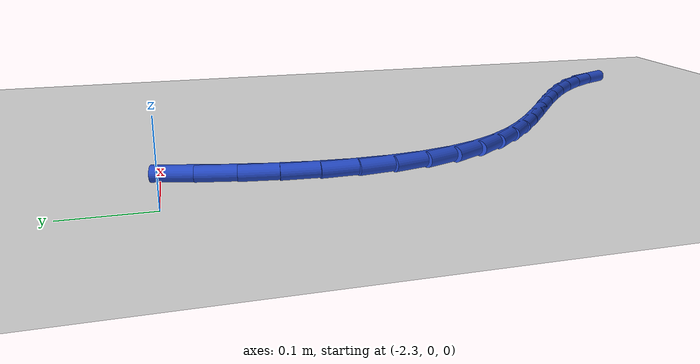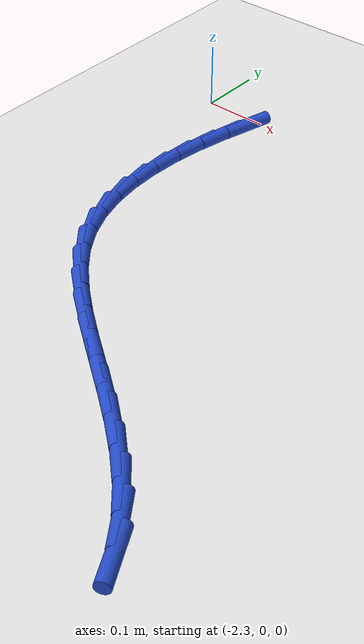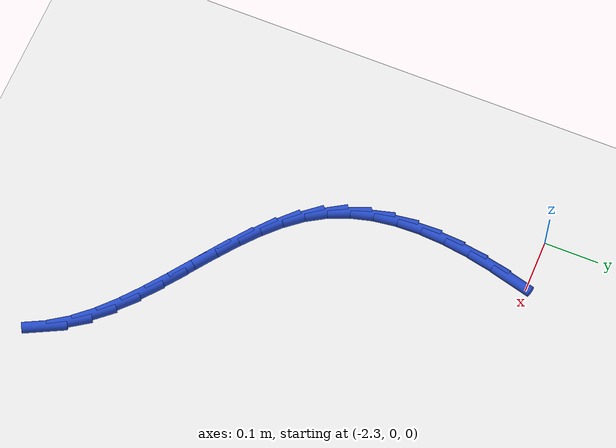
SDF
<sdf version="1.6">
 <world name="default">
  <model name="ground_plane">
   <static>1</static>
   <link name="link">
    <collision name="collision">
     <geometry><plane><normal>0 0 1</normal><size>100 100</size></plane></geometry>
     <surface><friction><ode><mu>100</mu><mu2>50</mu2></ode></friction></surface>
    </collision>
    <visual name="visual">
     <cast_shadows>0</cast_shadows>
     <geometry><plane><normal>0 0 1</normal><size>100 100</size></plane></geometry>
     <material>
      <script><uri>file://media/materials/scripts/gazebo.material</uri><name>Gazebo/WhiteGlow</name></script>
     </material>
    </visual>
   </link>
  </model>
  <model name="line">
   <link name="link_79">
    <pose>-2.207278406447881 -0.028823244083907296 0.01 0 1.57 1.3212181183846705</pose>
    <collision name="collision">
     <geometry><cylinder><radius>0.01</radius><length>0.08</length></cylinder></geometry>
    </collision>
    <visual name="visual">
     <material>
      <script><name>Gazebo/Blue</name><uri>file://media/materials/scripts/gazebo.material</uri></script>
     </material>
     <geometry><cylinder><radius>0.01</radius><length>0.08</length></cylinder></geometry>
    </visual>
   </link>
   <link name="link_80">
    <pose>-2.219529313035307 -0.07688624343290656 0.01 0 1.57 1.37619946927614</pose>
    <collision name="collision">
     <geometry><cylinder><radius>0.01</radius><length>0.08</length></cylinder></geometry>
    </collision>
    <visual name="visual">
     <material>
      <script><name>Gazebo/Blue</name><uri>file://media/materials/scripts/gazebo.material</uri></script>
     </material>
     <geometry><cylinder><radius>0.01</radius><length>0.08</length></cylinder></geometry>
    </visual>
   </link>
   <link name="link_81">
    <pose>-2.228904019604487 -0.12445162177451004 0.01 0 1.57 1.4410778705131437</pose>
    <collision name="collision">
     <geometry><cylinder><radius>0.01</radius><length>0.08</length></cylinder></geometry>
    </collision>
    <visual name="visual">
     <material>
      <script><name>Gazebo/Blue</name><uri>file://media/materials/scripts/gazebo.material</uri></script>
     </material>
     <geometry><cylinder><radius>0.01</radius><length>0.08</length></cylinder></geometry>
    </visual>
   </link>
   <link name="link_82">
    <pose>-2.2350036628676824 -0.17120974968601504 0.01 0 1.57 1.5176988174255892</pose>
    <collision name="collision">
     <geometry><cylinder><radius>0.01</radius><length>0.08</length></cylinder></geometry>
    </collision>
    <visual name="visual">
     <material>
      <script><name>Gazebo/Blue</name><uri>file://media/materials/scripts/gazebo.material</uri></script>
     </material>
     <geometry><cylinder><radius>0.01</radius><length>0.08</length></cylinder></geometry>
    </visual>
   </link>
   <link name="link_83">
    <pose>-2.2374293795371547 -0.2168509977447166 0.01 0 1.57 -1.5335618656920065</pose>
    <collision name="collision">
     <geometry><cylinder><radius>0.01</radius><length>0.08</length></cylinder></geometry>
    </collision>
    <visual name="visual">
     <material>
      <script><name>Gazebo/Blue</name><uri>file://media/materials/scripts/gazebo.material</uri></script>
     </material>
     <geometry><cylinder><radius>0.01</radius><length>0.08</length></cylinder></geometry>
    </visual>
   </link>
   <link name="link_84">
    <pose>-2.235782306325165 -0.26106573652791204 0.01 0 1.57 -1.427737754837585</pose>
    <collision name="collision">
     <geometry><cylinder><radius>0.01</radius><length>0.08</length></cylinder></geometry>
    </collision>
    <visual name="visual">
     <material>
      <script><name>Gazebo/Blue</name><uri>file://media/materials/scripts/gazebo.material</uri></script>
     </material>
     <geometry><cylinder><radius>0.01</radius><length>0.08</length></cylinder></geometry>
    </visual>
   </link>
   <link name="link_85">
    <pose>-2.229663579943976 -0.30354433661289804 0.01 0 1.57 -1.305416790452756</pose>
    <collision name="collision">
     <geometry><cylinder><radius>0.01</radius><length>0.08</length></cylinder></geometry>
    </collision>
    <visual name="visual">
     <material>
      <script><name>Gazebo/Blue</name><uri>file://media/materials/scripts/gazebo.material</uri></script>
     </material>
     <geometry><cylinder><radius>0.01</radius><length>0.08</length></cylinder></geometry>
    </visual>
   </link>
   <link name="link_86">
    <pose>-2.2186743371058473 -0.3439771685769709 0.01 0 1.57 -1.1672426977100507</pose>
    <collision name="collision">
     <geometry><cylinder><radius>0.01</radius><length>0.08</length></cylinder></geometry>
    </collision>
    <visual name="visual">
     <material>
      <script><name>Gazebo/Blue</name><uri>file://media/materials/scripts/gazebo.material</uri></script>
     </material>
     <geometry><cylinder><radius>0.01</radius><length>0.08</length></cylinder></geometry>
    </visual>
   </link>
   <link name="link_87">
    <pose>-2.202415714523042 -0.3820546029974281 0.01 0 1.57 -1.0172362902073424</pose>
    <collision name="collision">
     <geometry><cylinder><radius>0.01</radius><length>0.08</length></cylinder></geometry>
    </collision>
    <visual name="visual">
     <material>
      <script><name>Gazebo/Blue</name><uri>file://media/materials/scripts/gazebo.material</uri></script>
     </material>
     <geometry><cylinder><radius>0.01</radius><length>0.08</length></cylinder></geometry>
    </visual>
   </link>
   <link name="link_88">
    <pose>-2.1805191931824037 -0.41748505343539927 0.01 0 1.57 -0.8795677394073161</pose>
    <collision name="collision">
     <geometry><cylinder><radius>0.01</radius><length>0.08</length></cylinder></geometry>
    </collision>
    <visual name="visual">
     <material>
      <script><name>Gazebo/Blue</name><uri>file://media/materials/scripts/gazebo.material</uri></script>
     </material>
     <geometry><cylinder><radius>0.01</radius><length>0.08</length></cylinder></geometry>
    </visual>
   </link>
   <link name="link_89">
    <pose>-2.1532992637699233 -0.450383057280306 0.01 0 1.57 -0.7746248057922883</pose>
    <collision name="collision">
     <geometry><cylinder><radius>0.01</radius><length>0.08</length></cylinder></geometry>
    </collision>
    <visual name="visual">
     <material>
      <script><name>Gazebo/Blue</name><uri>file://media/materials/scripts/gazebo.material</uri></script>
     </material>
     <geometry><cylinder><radius>0.01</radius><length>0.08</length></cylinder></geometry>
    </visual>
   </link>
   <link name="link_90">
    <pose>-2.1217452453639707 -0.4812644110698584 0.01 0 1.57 -0.700451218341189</pose>
    <collision name="collision">
     <geometry><cylinder><radius>0.01</radius><length>0.08</length></cylinder></geometry>
    </collision>
    <visual name="visual">
     <material>
      <script><name>Gazebo/Blue</name><uri>file://media/materials/scripts/gazebo.material</uri></script>
     </material>
     <geometry><cylinder><radius>0.01</radius><length>0.08</length></cylinder></geometry>
    </visual>
   </link>
   <link name="link_91">
    <pose>-2.0868751649816604 -0.5106619813453095 0.01 0 1.57 -0.653253560467169</pose>
    <collision name="collision">
     <geometry><cylinder><radius>0.01</radius><length>0.08</length></cylinder></geometry>
    </collision>
    <visual name="visual">
     <material>
      <script><name>Gazebo/Blue</name><uri>file://media/materials/scripts/gazebo.material</uri></script>
     </material>
     <geometry><cylinder><radius>0.01</radius><length>0.08</length></cylinder></geometry>
    </visual>
   </link>
   <link name="link_92">
    <pose>-2.0497070496401024 -0.5391086346479126 0.01 0 1.57 -0.6299237464799936</pose>
    <collision name="collision">
     <geometry><cylinder><radius>0.01</radius><length>0.08</length></cylinder></geometry>
    </collision>
    <visual name="visual">
     <material>
      <script><name>Gazebo/Blue</name><uri>file://media/materials/scripts/gazebo.material</uri></script>
     </material>
     <geometry><cylinder><radius>0.01</radius><length>0.08</length></cylinder></geometry>
    </visual>
   </link>
   <link name="link_93">
    <pose>-2.011258926356411 -0.5671372375189194 0.01 0 1.57 -0.6286377127400984</pose>
    <collision name="collision">
     <geometry><cylinder><radius>0.01</radius><length>0.08</length></cylinder></geometry>
    </collision>
    <visual name="visual">
     <material>
      <script><name>Gazebo/Blue</name><uri>file://media/materials/scripts/gazebo.material</uri></script>
     </material>
     <geometry><cylinder><radius>0.01</radius><length>0.08</length></cylinder></geometry>
    </visual>
   </link>
   <link name="link_94">
    <pose>-1.9725488221476972 -0.5952806564995834 0.01 0 1.57 -0.6489682641366691</pose>
    <collision name="collision">
     <geometry><cylinder><radius>0.01</radius><length>0.08</length></cylinder></geometry>
    </collision>
    <visual name="visual">
     <material>
      <script><name>Gazebo/Blue</name><uri>file://media/materials/scripts/gazebo.material</uri></script>
     </material>
     <geometry><cylinder><radius>0.01</radius><length>0.08</length></cylinder></geometry>
    </visual>
   </link>
   <link name="link_95">
    <pose>-1.934594764031075 -0.6240717581311575 0.01 0 1.57 -0.6918222070433341</pose>
    <collision name="collision">
     <geometry><cylinder><radius>0.01</radius><length>0.08</length></cylinder></geometry>
    </collision>
    <visual name="visual">
     <material>
      <script><name>Gazebo/Blue</name><uri>file://media/materials/scripts/gazebo.material</uri></script>
     </material>
     <geometry><cylinder><radius>0.01</radius><length>0.08</length></cylinder></geometry>
    </visual>
   </link>
   <link name="link_96">
    <pose>-1.898414779023656 -0.654043408954895 0.01 0 1.57 -0.7592362977613238</pose>
    <collision name="collision">
     <geometry><cylinder><radius>0.01</radius><length>0.08</length></cylinder></geometry>
    </collision>
    <visual name="visual">
     <material>
      <script><name>Gazebo/Blue</name><uri>file://media/materials/scripts/gazebo.material</uri></script>
     </material>
     <geometry><cylinder><radius>0.01</radius><length>0.08</length></cylinder></geometry>
    </visual>
   </link>
   <link name="link_97">
    <pose>-1.8650268941425532 -0.6857284755120476 0.01 0 1.57 -0.8538417463342735</pose>
    <collision name="collision">
     <geometry><cylinder><radius>0.01</radius><length>0.08</length></cylinder></geometry>
    </collision>
    <visual name="visual">
     <material>
      <script><name>Gazebo/Blue</name><uri>file://media/materials/scripts/gazebo.material</uri></script>
     </material>
     <geometry><cylinder><radius>0.01</radius><length>0.08</length></cylinder></geometry>
    </visual>
   </link>
   <link name="link_98">
    <pose>-1.835449136404879 -0.7196598243438688 0.01 0 1.57 -0.9766946874250882</pose>
    <collision name="collision">
     <geometry><cylinder><radius>0.01</radius><length>0.08</length></cylinder></geometry>
    </collision>
    <visual name="visual">
     <material>
      <script><name>Gazebo/Blue</name><uri>file://media/materials/scripts/gazebo.material</uri></script>
     </material>
     <geometry><cylinder><radius>0.01</radius><length>0.08</length></cylinder></geometry>
    </visual>
   </link>
   <link name="link_99">
    <pose>-1.810663297577354 -0.7563517289685112 0.01 0 1.57 -1.1008246106099606</pose>
    <collision name="collision">
     <geometry><cylinder><radius>0.01</radius><length>0.08</length></cylinder></geometry>
    </collision>
    <visual name="visual">
     <material>
      <script><name>Gazebo/Blue</name><uri>file://media/materials/scripts/gazebo.material</uri></script>
     </material>
     <geometry><cylinder><radius>0.01</radius><length>0.08</length></cylinder></geometry>
    </visual>
   </link>
  </model>
 </world>
</sdf>
